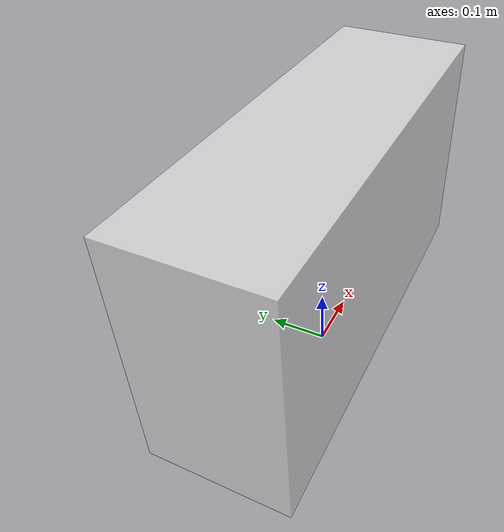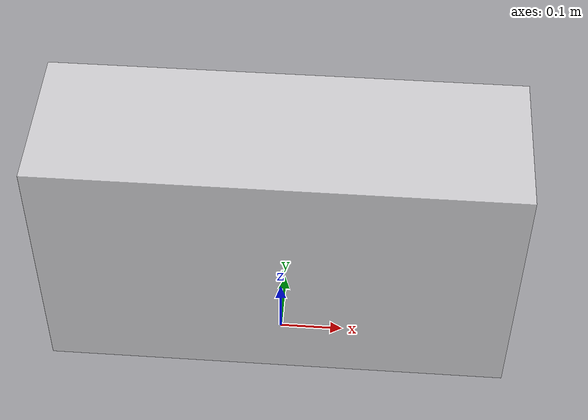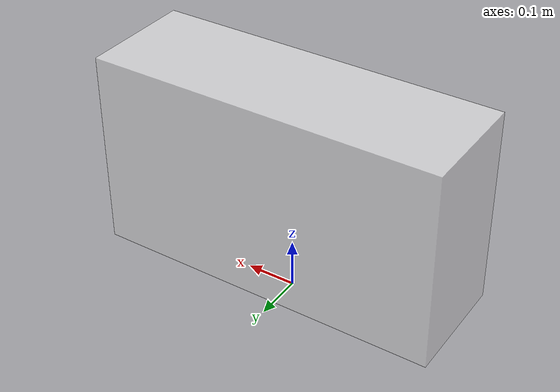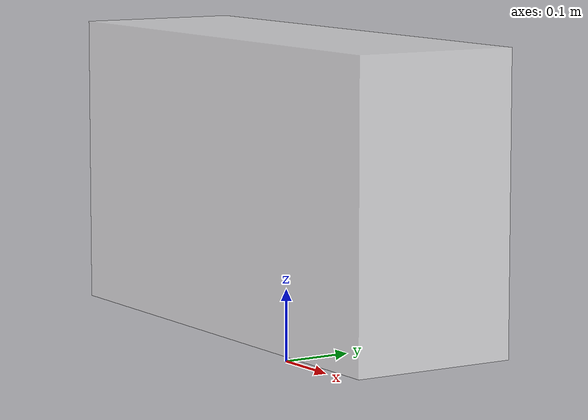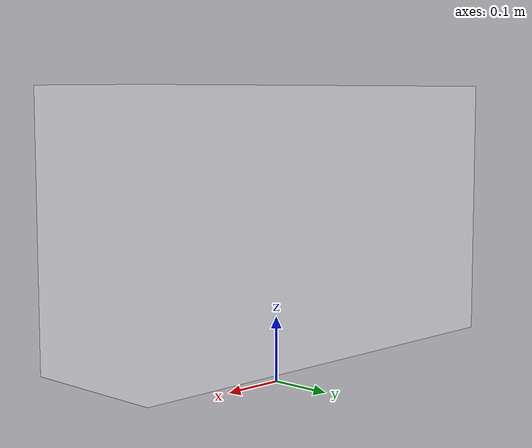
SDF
<sdf version='1.6'>
	<model name='shoe_box'>
    <link name="shoe_box">
      <pose> 0.0 0 0.25 0 0 0</pose>
      <inertial>
        <pose frame=''>0 0 0 0 0 0</pose>
        <mass>10</mass>
        <inertia>
          <ixx>1</ixx>
          <ixy>0</ixy>
          <ixz>0</ixz>
          <iyy>1</iyy>
          <iyz>0</iyz>
          <izz>1</izz>
        </inertia>
      </inertial>
      <visual name='box'>
        <pose frame=''> 0 0 0 0 0 0 </pose>
        <geometry>
          <box>
            <size>0.7 0.23 0.4</size>
          </box>
        </geometry>
        <material>
          <diffuse>1 1 1 0.5</diffuse>
        </material>
      </visual>

      <collision name='box'>
        <pose frame=''> 0 0 0 0 0 0 </pose>
        <geometry>
          <box>
            <size>0.7 0.23 0.4</size>
          </box>
        </geometry>

        <surface>
          <friction>
          <ode>
            <mu>0.3</mu>
            <mu2>0.3</mu2>
          </ode>
          </friction>
        </surface>
      </collision>

      <!-- TODO: Put collision here -->
    </link>
    <joint name="base_weld" type="fixed">
      <child>shoe_box</child>
      <parent>world</parent>
    </joint>

  </model>

</sdf>
